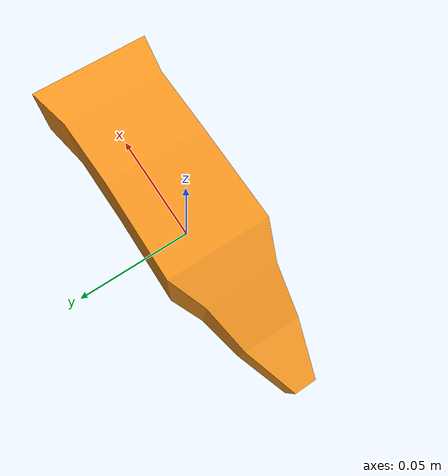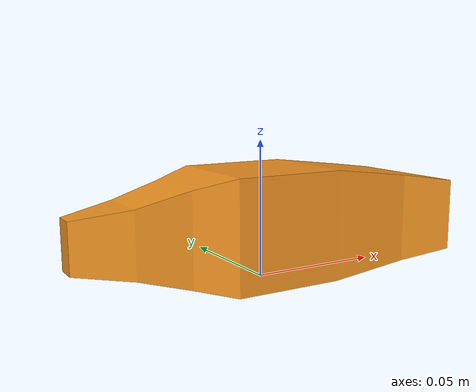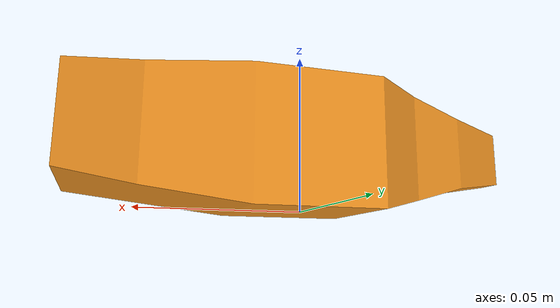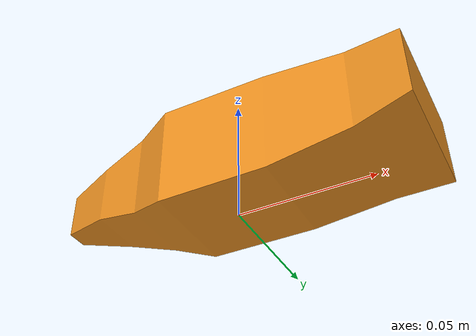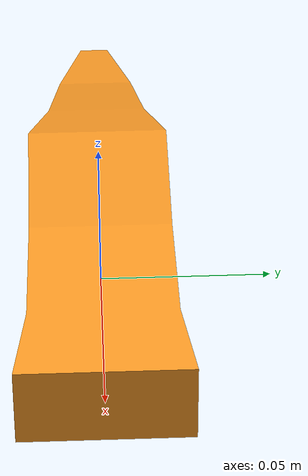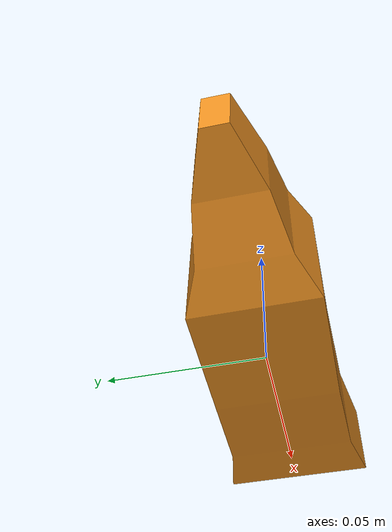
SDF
<?xml version="1.0" ?>
<sdf version='1.4'>
  <model name="carrot">
      <static>0</static>
      <link name='link'>
        <inertial>
          <mass>0.25</mass>
          <inertia>
            <ixx>0.001</ixx>
            <ixy>0.000000</ixy>
            <ixz>0.000000</ixz>
            <iyy>0.001</iyy>
            <iyz>0.000000</iyz>
            <izz>0.001</izz>
          </inertia>
        </inertial>
        <collision name='collision'>
          <geometry>
            <box>
              <size>0.060 0.060 0.060</size>
            </box>
          </geometry>
          <surface>
            <friction>
              <ode>
                <mu>30.0</mu>
                <mu2>30.0</mu2>
              </ode>
            </friction>
            <contact>
              <ode>
                <kp>1000000.0</kp>
                <kd>100.0</kd>
                <max_vel>1.0</max_vel>
                <min_depth>0.002</min_depth>
              </ode>
            </contact>
          </surface>
        </collision>
        <visual name='visual'>
          <geometry>
            <mesh>
              <uri>model://carrot/meshes/model.stl</uri>
            </mesh>
          </geometry>
          <material>
            <ambient>1 1 1 1</ambient>
            <diffuse>0.93 0.57 0.13 1</diffuse>
            <specular>0.1 0.1 0.1 1</specular>
            <emissive>0 0 0 1</emissive>
          </material>
        </visual>
        <velocity_decay>
          <linear>0.000000</linear>
          <angular>0.000000</angular>
        </velocity_decay>
        <self_collide>0</self_collide>
        <kinematic>0</kinematic>
        <gravity>1</gravity>
      </link>
  </model>
</sdf>
